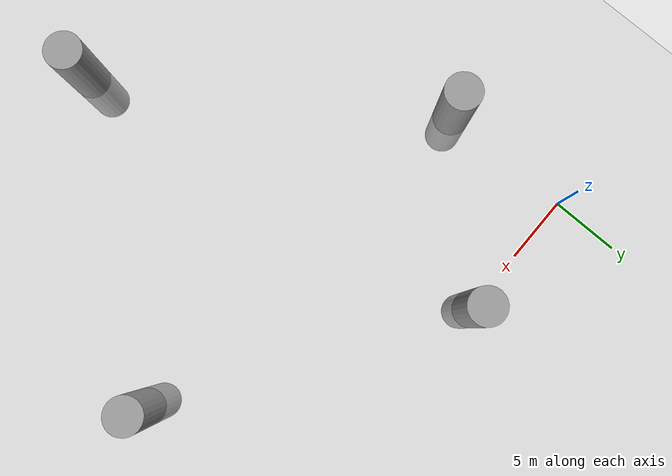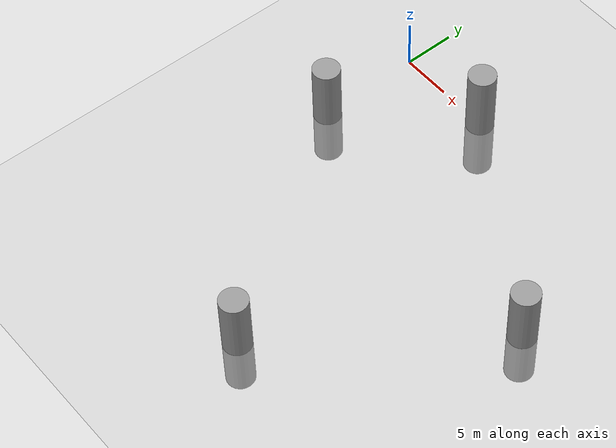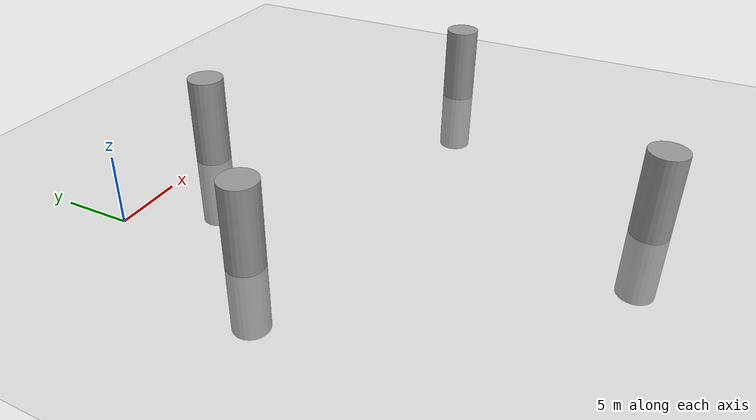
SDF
<sdf version="1.7">
 <world name="default">
  <physics type="ode">
   <ode>
    <solver>
     <type>quick</type>
     <iters>50</iters>
     <sor>0.8</sor>
     <use_dynamic_moi_rescaling>0</use_dynamic_moi_rescaling>
    </solver>
    <constraints>
     <cfm>0</cfm>
     <erp>0.2</erp>
     <contact_max_correcting_vel>0.1</contact_max_correcting_vel>
     <contact_surface_layer>0</contact_surface_layer>
    </constraints>
   </ode>
   <real_time_update_rate>100</real_time_update_rate>
   <max_step_size>0.01</max_step_size>
   <real_time_factor>1</real_time_factor>
  </physics>
  <light name="sun" type="directional">
   <pose>0 0 10 0 -0 0</pose>
   <diffuse>0.8 0.8 0.8 1</diffuse>
   <specular>0.2 0.2 0.2 1</specular>
   <attenuation>
    <range>1000</range>
    <constant>0.9</constant>
    <linear>0.01</linear>
    <quadratic>0.001</quadratic>
   </attenuation>
   <direction>-0.5 0.1 -0.9</direction>
   <spot><inner_angle>0</inner_angle><outer_angle>0</outer_angle><falloff>0</falloff></spot>
  </light>
  <model name="ground_plane">
   <static>1</static>
   <link name="link">
    <collision name="collision">
     <geometry><plane><normal>0 0 1</normal><size>100 100</size></plane></geometry>
     <surface><friction><ode><mu>100</mu><mu2>50</mu2></ode></friction></surface>
    </collision>
    <visual name="visual">
     <cast_shadows>0</cast_shadows>
     <geometry><plane><normal>0 0 1</normal><size>100 100</size></plane></geometry>
     <material>
      <script><uri>file://media/materials/scripts/gazebo.material</uri><name>Gazebo/Grey</name></script>
     </material>
    </visual>
   </link>
  </model>
  <gravity>0 0 0</gravity>
  <magnetic_field>6e-06 2.3e-05 -4.2e-05</magnetic_field>
  <atmosphere type="adiabatic"/>
  <scene><ambient>0.4 0.4 0.4 1</ambient><background>0.7 0.7 0.7 1</background><shadows>1</shadows></scene>
  <spherical_coordinates>
   <surface_model>EARTH_WGS84</surface_model>
   <latitude_deg>0</latitude_deg>
   <longitude_deg>0</longitude_deg>
   <elevation>0</elevation>
   <heading_deg>0</heading_deg>
  </spherical_coordinates>
  <model name="unit_cylinder">
   <pose>10 0 0.5 0 -0 0</pose>
   <link name="link">
    <inertial>
     <mass>1</mass>
     <inertia><ixx>0.145833</ixx><ixy>0</ixy><ixz>0</ixz><iyy>0.145833</iyy><iyz>0</iyz><izz>0.125</izz></inertia>
    </inertial>
    <collision name="collision">
     <geometry><cylinder><radius>1.34079</radius><length>12.4821</length></cylinder></geometry>
    </collision>
    <visual name="visual">
     <geometry><cylinder><radius>1.34079</radius><length>12.4821</length></cylinder></geometry>
     <material>
      <script><name>Gazebo/Grey</name><uri>file://media/materials/scripts/gazebo.material</uri></script>
     </material>
    </visual>
   </link>
  </model>
  <model name="unit_cylinder_clone">
   <pose>0 -10 0.5 0 -0 0</pose>
   <link name="link">
    <inertial>
     <mass>1</mass>
     <inertia><ixx>0.145833</ixx><ixy>0</ixy><ixz>0</ixz><iyy>0.145833</iyy><iyz>0</iyz><izz>0.125</izz></inertia>
    </inertial>
    <collision name="collision">
     <geometry><cylinder><radius>1.34079</radius><length>11.4192</length></cylinder></geometry>
    </collision>
    <visual name="visual">
     <geometry><cylinder><radius>1.34079</radius><length>11.4192</length></cylinder></geometry>
     <material>
      <script><name>Gazebo/Grey</name><uri>file://media/materials/scripts/gazebo.material</uri></script>
     </material>
    </visual>
   </link>
  </model>
  <model name="unit_cylinder_clone_clone">
   <pose>30 -13 0.5 0 -0 0</pose>
   <link name="link">
    <inertial>
     <mass>1</mass>
     <inertia><ixx>0.145833</ixx><ixy>0</ixy><ixz>0</ixz><iyy>0.145833</iyy><iyz>0</iyz><izz>0.125</izz></inertia>
    </inertial>
    <collision name="collision">
     <geometry><cylinder><radius>1.34079</radius><length>11.4192</length></cylinder></geometry>
    </collision>
    <visual name="visual">
     <geometry><cylinder><radius>1.34079</radius><length>11.4192</length></cylinder></geometry>
     <material>
      <script><name>Gazebo/Grey</name><uri>file://media/materials/scripts/gazebo.material</uri></script>
     </material>
    </visual>
   </link>
  </model>
  <model name="unit_cylinder_clone_clone_clone">
   <pose>15 -32 0.5 0 -0 0</pose>
   <link name="link">
    <inertial>
     <mass>1</mass>
     <inertia><ixx>0.145833</ixx><ixy>0</ixy><ixz>0</ixz><iyy>0.145833</iyy><iyz>0</iyz><izz>0.125</izz></inertia>
    </inertial>
    <collision name="collision">
     <geometry><cylinder><radius>1.34079</radius><length>11.4192</length></cylinder></geometry>
    </collision>
    <visual name="visual">
     <geometry><cylinder><radius>1.34079</radius><length>11.4192</length></cylinder></geometry>
     <material>
      <script><name>Gazebo/Grey</name><uri>file://media/materials/scripts/gazebo.material</uri></script>
     </material>
    </visual>
   </link>
  </model>
 </world>
</sdf>
